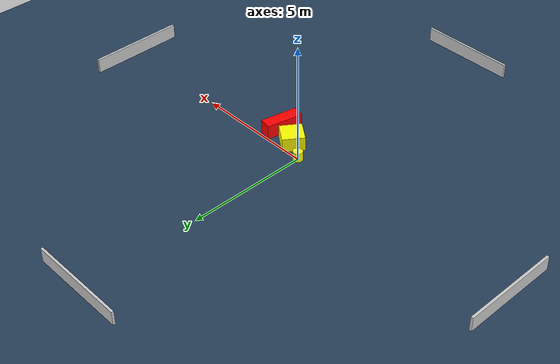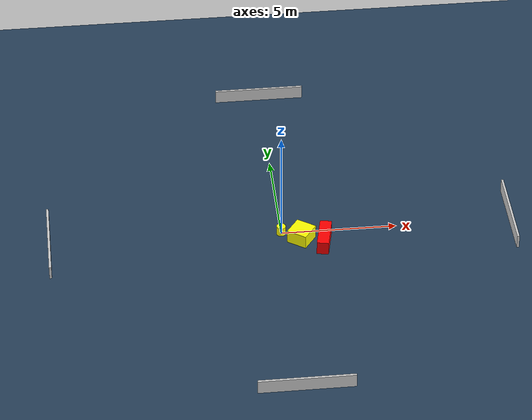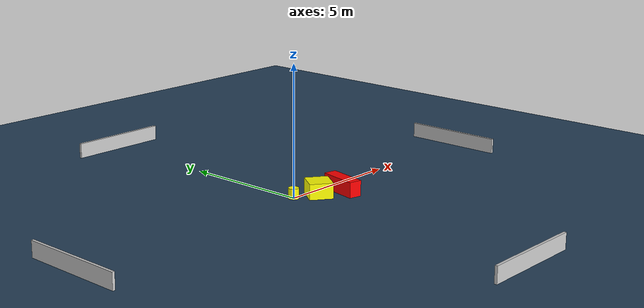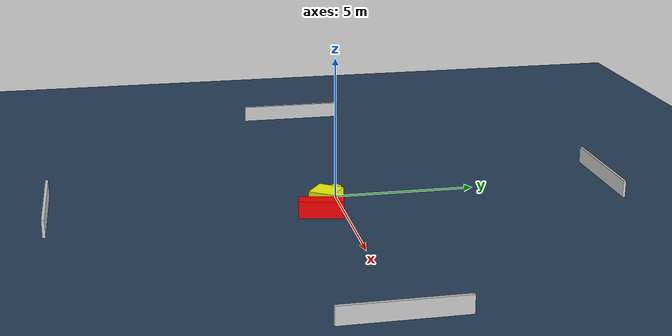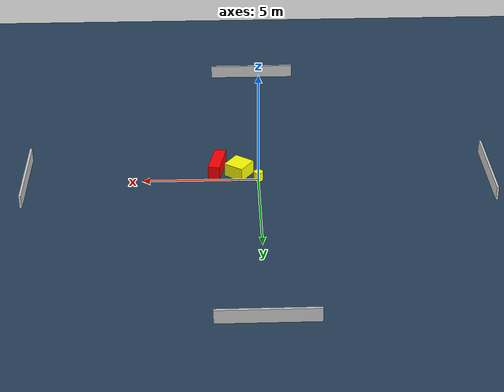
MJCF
<?xml version="1.0" ?>
<mujoco model="generated_environment">
  <option timestep="0.01" integrator="RK4" cone="elliptic"/>
  <default>
    <geom density="1"/>
  </default>
  <asset>
    <texture builtin="gradient" height="3072" name="skybox" rgb1="0.3 0.5 0.7" rgb2="0 0 0" type="skybox" width="512"/>
    <texture builtin="checker" height="300" name="groundplane" rgb1="0.2 0.3 0.4" rgb2="0.1 0.2 0.3" type="2d" width="300"/>
    <material name="groundplane" reflectance="0.2" texrepeat="5 5" texture="groundplane"/>
  </asset>
  <worldbody>
    <light dir="0 0 -1" directional="true" pos="0 0 1.5"/>
    <geom condim="3" friction="0.5 0.005 0.001" material="groundplane" name="floor" pos="0 0 0" size="0 0 0.05" type="plane"/>
    <body name="walls">
      <geom name="wall_1" condim="4" pos="-10.0 0.0 0.3" rgba="0.800000011920929 0.800000011920929 0.800000011920929 1.0" size="0.05 2.0 0.3" type="box"/>
      <geom name="wall_2" condim="4" pos="10.0 0.0 0.3" rgba="0.800000011920929 0.800000011920929 0.800000011920929 1.0" size="0.05 2.0 0.3" type="box"/>
      <geom name="wall_3" condim="4" pos="0.0 -10.0 0.3" rgba="0.800000011920929 0.800000011920929 0.800000011920929 1.0" size="2.0 0.05 0.3" type="box"/>
      <geom name="wall_4" condim="4" pos="0.0 10.0 0.3" rgba="0.800000011920929 0.800000011920929 0.800000011920929 1.0" size="2.0 0.05 0.3" type="box"/>
    </body>
    <body name="robot">
      <joint name="joint_x" type="slide" pos="0 0 0" axis="1 0 0"/>
      <joint name="joint_y" type="slide" pos="0 0 0" axis="0 1 0"/>
      <geom name="robot" type="cylinder" pos="0.0 0.0 0.2" size="0.2 0.2 0.0" mass="5.0" friction="1.0 0.005 0.0001" condim="4" rgba="1.0 1.0 0.0 1.0"/>
    </body>
    <body name="obstacle_1_movable">
      <geom name="obstacle_1_movable" condim="4" pos="0.8297928097892532 -0.4890023904139683 0.3" euler="0 0 234.96720481980634" friction="0.0 0.005 0.001" rgba="1.0 1.0 0.0 1.0" size="0.4548260474380552 0.45100128064454537 0.3" type="box" mass="0.1"/>
      <joint type="free"/>
    </body>
    <body name="obstacle_2_static">
      <geom name="obstacle_2_static" condim="4" pos="1.7751067705533183 -0.829244699934194 0.3" euler="0 0 258.2681538368218" friction="0.0 0.005 0.001" rgba="1.0 0.0 0.0 1.0" size="0.7686125041124139 0.2537272916252617 0.3" type="box"/>
    </body>
  </worldbody>
  <actuator>
    <motor name="actuator_x" joint="joint_x" gear="1" ctrlrange="-1 1"/>
    <motor name="actuator_y" joint="joint_y" gear="1" ctrlrange="-1 1"/>
  </actuator>
</mujoco>
